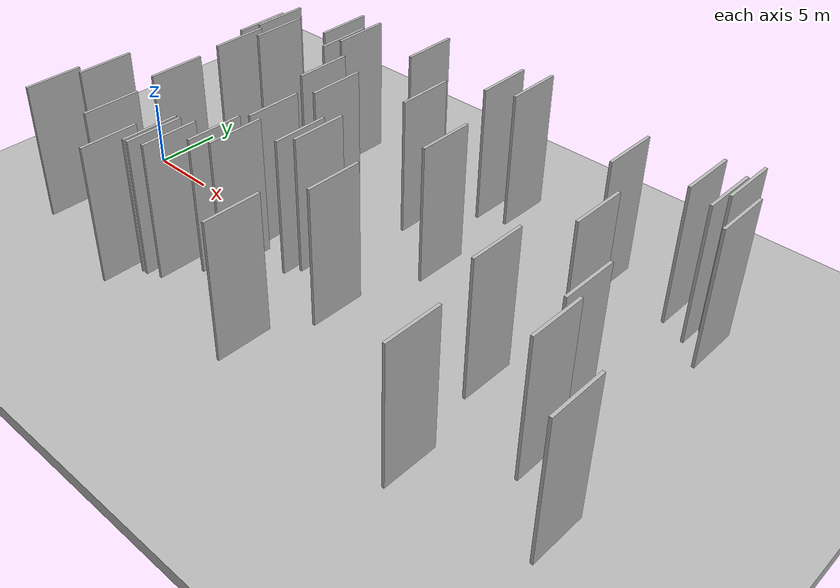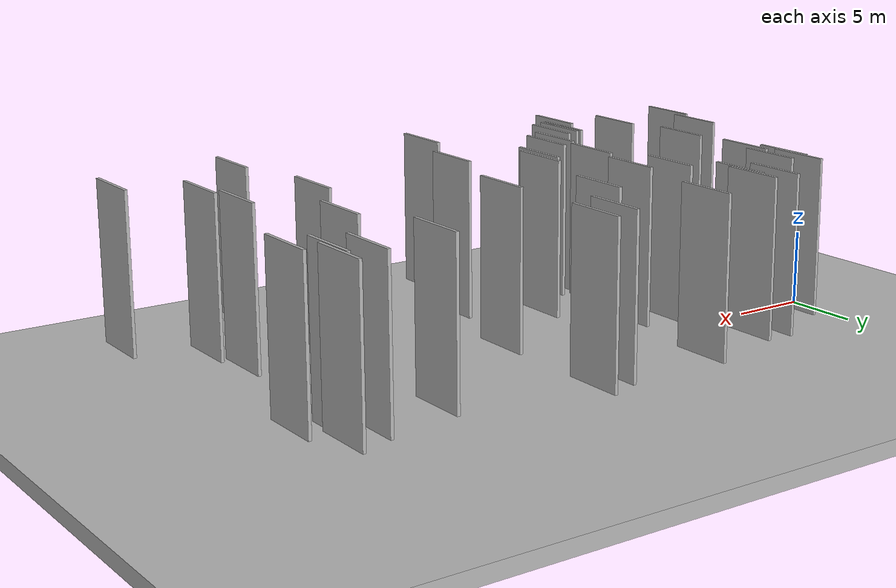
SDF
<?xml version="1.0" encoding="utf-8"?>

<sdf version="1.6">

   <world name="default">

      <gui fullscreen="0">

         <camera name="user_camera">

            <pose>-15 0 4.57585 0 0 0</pose>

            <view_controller>orbit</view_controller>

         </camera>

      </gui>

      <scene>

         <sky>

           <clouds>

             <speed>12</speed>

           </clouds>

         </sky>

         <ambient>0.4 0.4 0.4 1</ambient>

         <background>0.7 0.7 0.7 1</background>

         <shadows>1</shadows>

      </scene>

      <gravity>0 0 -9.8066</gravity>

      <magnetic_field>6e-06 2.3e-05 -4.2e-05</magnetic_field>

      <physics default="0" name="default_physics" type="ode">

         <ode>

            <solver>

               <type>quick</type>

               <iters>10</iters>

               <sor>1.0</sor>

               <use_dynamic_moi_rescaling>0</use_dynamic_moi_rescaling>

            </solver>

            <constraints>

               <cfm>0</cfm>

               <erp>0.2</erp>

               <contact_max_correcting_vel>100</contact_max_correcting_vel>

               <contact_surface_layer>0.001</contact_surface_layer>

            </constraints>

         </ode>

         <max_step_size>0.004</max_step_size>

         <real_time_factor>1</real_time_factor>

         <real_time_update_rate>250</real_time_update_rate>

      </physics>

      <light name="sun" type="directional">

         <cast_shadows>1</cast_shadows>

         <pose>0 0 10 0 0 0</pose>

         <diffuse>0.8 0.8 0.8 1</diffuse>

         <specular>0.2 0.2 0.2 1</specular>

         <attenuation>

            <range>1000</range>

            <constant>0.9</constant>

            <linear>0.01</linear>

            <quadratic>0.001</quadratic>

         </attenuation>

         <direction>-0.5 0.1 -0.9</direction>

      </light>

      <include>

         <name>ground_plane_1</name>

         <uri>model://HANNAS_ground_plane</uri>

         <pose>0 0 0  0 0 0</pose>

      </include>

      <include>

         <name>ground_plane_2</name>

         <uri>model://HANNAS_ground_plane</uri>

         <pose>100 0 0  0 0 0</pose>

      </include>

      <model name="HANNAS_wall_1">

         <static>1</static>

         <pose frame="">20.0038 -3.0696 2.5 0.000000 0.000000 1.570796</pose>

         <link name="link">

            <pose frame="">0 0 5.00 0 0 0</pose>

            <collision name="collision">

               <geometry>

                  <box>

                     <size>4.00 0.2 10.00</size>

                  </box>

               </geometry>

               <max_contacts>10</max_contacts>

               <surface>

                  <contact>

                     <ode/>

                  </contact>

                  <bounce/>

                  <friction>

                     <torsional>

                        <ode/>

                     </torsional>

                     <ode/>

                  </friction>

               </surface>

            </collision>

            <visual name="visual">

               <cast_shadows>0</cast_shadows>

               <geometry>

                  <box>

                     <size>4.00 0.2 10.00</size>

                  </box>

               </geometry>

               <material>

                  <script>

                     <uri>model://HANNAS_wall/materials/scripts</uri>

                     <uri>model://HANNAS_wall/materials/textures</uri>

                     <name>vrc/HANNAS_wall</name>

                  </script>

               </material>

            </visual>

            <self_collide>0</self_collide>

            <enable_wind>0</enable_wind>

            <kinematic>0</kinematic>

         </link>

      </model>

      <model name="HANNAS_wall_2">

         <static>1</static>

         <pose frame="">16.5379 -2.1623 2.5 0.000000 0.000000 1.570796</pose>

         <link name="link">

            <pose frame="">0 0 5.00 0 0 0</pose>

            <collision name="collision">

               <geometry>

                  <box>

                     <size>4.00 0.2 10.00</size>

                  </box>

               </geometry>

               <max_contacts>10</max_contacts>

               <surface>

                  <contact>

                     <ode/>

                  </contact>

                  <bounce/>

                  <friction>

                     <torsional>

                        <ode/>

                     </torsional>

                     <ode/>

                  </friction>

               </surface>

            </collision>

            <visual name="visual">

               <cast_shadows>0</cast_shadows>

               <geometry>

                  <box>

                     <size>4.00 0.2 10.00</size>

                  </box>

               </geometry>

               <material>

                  <script>

                     <uri>model://HANNAS_wall/materials/scripts</uri>

                     <uri>model://HANNAS_wall/materials/textures</uri>

                     <name>vrc/HANNAS_wall</name>

                  </script>

               </material>

            </visual>

            <self_collide>0</self_collide>

            <enable_wind>0</enable_wind>

            <kinematic>0</kinematic>

         </link>

      </model>

      <model name="HANNAS_wall_3">

         <static>1</static>

         <pose frame="">25.1611 -5.2143 2.5 0.000000 0.000000 1.570796</pose>

         <link name="link">

            <pose frame="">0 0 5.00 0 0 0</pose>

            <collision name="collision">

               <geometry>

                  <box>

                     <size>4.00 0.2 10.00</size>

                  </box>

               </geometry>

               <max_contacts>10</max_contacts>

               <surface>

                  <contact>

                     <ode/>

                  </contact>

                  <bounce/>

                  <friction>

                     <torsional>

                        <ode/>

                     </torsional>

                     <ode/>

                  </friction>

               </surface>

            </collision>

            <visual name="visual">

               <cast_shadows>0</cast_shadows>

               <geometry>

                  <box>

                     <size>4.00 0.2 10.00</size>

                  </box>

               </geometry>

               <material>

                  <script>

                     <uri>model://HANNAS_wall/materials/scripts</uri>

                     <uri>model://HANNAS_wall/materials/textures</uri>

                     <name>vrc/HANNAS_wall</name>

                  </script>

               </material>

            </visual>

            <self_collide>0</self_collide>

            <enable_wind>0</enable_wind>

            <kinematic>0</kinematic>

         </link>

      </model>

      <model name="HANNAS_wall_4">

         <static>1</static>

         <pose frame="">23.4198 -11.3135 2.5 0.000000 0.000000 1.570796</pose>

         <link name="link">

            <pose frame="">0 0 5.00 0 0 0</pose>

            <collision name="collision">

               <geometry>

                  <box>

                     <size>4.00 0.2 10.00</size>

                  </box>

               </geometry>

               <max_contacts>10</max_contacts>

               <surface>

                  <contact>

                     <ode/>

                  </contact>

                  <bounce/>

                  <friction>

                     <torsional>

                        <ode/>

                     </torsional>

                     <ode/>

                  </friction>

               </surface>

            </collision>

            <visual name="visual">

               <cast_shadows>0</cast_shadows>

               <geometry>

                  <box>

                     <size>4.00 0.2 10.00</size>

                  </box>

               </geometry>

               <material>

                  <script>

                     <uri>model://HANNAS_wall/materials/scripts</uri>

                     <uri>model://HANNAS_wall/materials/textures</uri>

                     <name>vrc/HANNAS_wall</name>

                  </script>

               </material>

            </visual>

            <self_collide>0</self_collide>

            <enable_wind>0</enable_wind>

            <kinematic>0</kinematic>

         </link>

      </model>

      <model name="HANNAS_wall_5">

         <static>1</static>

         <pose frame="">8.9676 -9.1478 2.5 0.000000 0.000000 1.570796</pose>

         <link name="link">

            <pose frame="">0 0 5.00 0 0 0</pose>

            <collision name="collision">

               <geometry>

                  <box>

                     <size>4.00 0.2 10.00</size>

                  </box>

               </geometry>

               <max_contacts>10</max_contacts>

               <surface>

                  <contact>

                     <ode/>

                  </contact>

                  <bounce/>

                  <friction>

                     <torsional>

                        <ode/>

                     </torsional>

                     <ode/>

                  </friction>

               </surface>

            </collision>

            <visual name="visual">

               <cast_shadows>0</cast_shadows>

               <geometry>

                  <box>

                     <size>4.00 0.2 10.00</size>

                  </box>

               </geometry>

               <material>

                  <script>

                     <uri>model://HANNAS_wall/materials/scripts</uri>

                     <uri>model://HANNAS_wall/materials/textures</uri>

                     <name>vrc/HANNAS_wall</name>

                  </script>

               </material>

            </visual>

            <self_collide>0</self_collide>

            <enable_wind>0</enable_wind>

            <kinematic>0</kinematic>

         </link>

      </model>

      <model name="HANNAS_wall_6">

         <static>1</static>

         <pose frame="">24.9732 10.5339 2.5 0.000000 0.000000 1.570796</pose>

         <link name="link">

            <pose frame="">0 0 5.00 0 0 0</pose>

            <collision name="collision">

               <geometry>

                  <box>

                     <size>4.00 0.2 10.00</size>

                  </box>

               </geometry>

               <max_contacts>10</max_contacts>

               <surface>

                  <contact>

                     <ode/>

                  </contact>

                  <bounce/>

                  <friction>

                     <torsional>

                        <ode/>

                     </torsional>

                     <ode/>

                  </friction>

               </surface>

            </collision>

            <visual name="visual">

               <cast_shadows>0</cast_shadows>

               <geometry>

                  <box>

                     <size>4.00 0.2 10.00</size>

                  </box>

               </geometry>

               <material>

                  <script>

                     <uri>model://HANNAS_wall/materials/scripts</uri>

                     <uri>model://HANNAS_wall/materials/textures</uri>

                     <name>vrc/HANNAS_wall</name>

                  </script>

               </material>

            </visual>

            <self_collide>0</self_collide>

            <enable_wind>0</enable_wind>

            <kinematic>0</kinematic>

         </link>

      </model>

      <model name="HANNAS_wall_7">

         <static>1</static>

         <pose frame="">18.3371 10.6129 2.5 0.000000 0.000000 1.570796</pose>

         <link name="link">

            <pose frame="">0 0 5.00 0 0 0</pose>

            <collision name="collision">

               <geometry>

                  <box>

                     <size>4.00 0.2 10.00</size>

                  </box>

               </geometry>

               <max_contacts>10</max_contacts>

               <surface>

                  <contact>

                     <ode/>

                  </contact>

                  <bounce/>

                  <friction>

                     <torsional>

                        <ode/>

                     </torsional>

                     <ode/>

                  </friction>

               </surface>

            </collision>

            <visual name="visual">

               <cast_shadows>0</cast_shadows>

               <geometry>

                  <box>

                     <size>4.00 0.2 10.00</size>

                  </box>

               </geometry>

               <material>

                  <script>

                     <uri>model://HANNAS_wall/materials/scripts</uri>

                     <uri>model://HANNAS_wall/materials/textures</uri>

                     <name>vrc/HANNAS_wall</name>

                  </script>

               </material>

            </visual>

            <self_collide>0</self_collide>

            <enable_wind>0</enable_wind>

            <kinematic>0</kinematic>

         </link>

      </model>

      <model name="HANNAS_wall_8">

         <static>1</static>

         <pose frame="">16.0989 -6.6021 2.5 0.000000 0.000000 1.570796</pose>

         <link name="link">

            <pose frame="">0 0 5.00 0 0 0</pose>

            <collision name="collision">

               <geometry>

                  <box>

                     <size>4.00 0.2 10.00</size>

                  </box>

               </geometry>

               <max_contacts>10</max_contacts>

               <surface>

                  <contact>

                     <ode/>

                  </contact>

                  <bounce/>

                  <friction>

                     <torsional>

                        <ode/>

                     </torsional>

                     <ode/>

                  </friction>

               </surface>

            </collision>

            <visual name="visual">

               <cast_shadows>0</cast_shadows>

               <geometry>

                  <box>

                     <size>4.00 0.2 10.00</size>

                  </box>

               </geometry>

               <material>

                  <script>

                     <uri>model://HANNAS_wall/materials/scripts</uri>

                     <uri>model://HANNAS_wall/materials/textures</uri>

                     <name>vrc/HANNAS_wall</name>

                  </script>

               </material>

            </visual>

            <self_collide>0</self_collide>

            <enable_wind>0</enable_wind>

            <kinematic>0</kinematic>

         </link>

      </model>

      <model name="HANNAS_wall_9">

         <static>1</static>

         <pose frame="">7.6789 2.5042 2.5 0.000000 0.000000 1.570796</pose>

         <link name="link">

            <pose frame="">0 0 5.00 0 0 0</pose>

            <collision name="collision">

               <geometry>

                  <box>

                     <size>4.00 0.2 10.00</size>

                  </box>

               </geometry>

               <max_contacts>10</max_contacts>

               <surface>

                  <contact>

                     <ode/>

                  </contact>

                  <bounce/>

                  <friction>

                     <torsional>

                        <ode/>

                     </torsional>

                     <ode/>

                  </friction>

               </surface>

            </collision>

            <visual name="visual">

               <cast_shadows>0</cast_shadows>

               <geometry>

                  <box>

                     <size>4.00 0.2 10.00</size>

                  </box>

               </geometry>

               <material>

                  <script>

                     <uri>model://HANNAS_wall/materials/scripts</uri>

                     <uri>model://HANNAS_wall/materials/textures</uri>

                     <name>vrc/HANNAS_wall</name>

                  </script>

               </material>

            </visual>

            <self_collide>0</self_collide>

            <enable_wind>0</enable_wind>

            <kinematic>0</kinematic>

         </link>

      </model>

      <model name="HANNAS_wall_10">

         <static>1</static>

         <pose frame="">26.8879 2.5137 2.5 0.000000 0.000000 1.570796</pose>

         <link name="link">

            <pose frame="">0 0 5.00 0 0 0</pose>

            <collision name="collision">

               <geometry>

                  <box>

                     <size>4.00 0.2 10.00</size>

                  </box>

               </geometry>

               <max_contacts>10</max_contacts>

               <surface>

                  <contact>

                     <ode/>

                  </contact>

                  <bounce/>

                  <friction>

                     <torsional>

                        <ode/>

                     </torsional>

                     <ode/>

                  </friction>

               </surface>

            </collision>

            <visual name="visual">

               <cast_shadows>0</cast_shadows>

               <geometry>

                  <box>

                     <size>4.00 0.2 10.00</size>

                  </box>

               </geometry>

               <material>

                  <script>

                     <uri>model://HANNAS_wall/materials/scripts</uri>

                     <uri>model://HANNAS_wall/materials/textures</uri>

                     <name>vrc/HANNAS_wall</name>

                  </script>

               </material>

            </visual>

            <self_collide>0</self_collide>

            <enable_wind>0</enable_wind>

            <kinematic>0</kinematic>

         </link>

      </model>

      <model name="HANNAS_wall_11">

         <static>1</static>

         <pose frame="">37.0851 -11.4978 2.5 0.000000 0.000000 1.570796</pose>

         <link name="link">

            <pose frame="">0 0 5.00 0 0 0</pose>

            <collision name="collision">

               <geometry>

                  <box>

                     <size>4.00 0.2 10.00</size>

                  </box>

               </geometry>

               <max_contacts>10</max_contacts>

               <surface>

                  <contact>

                     <ode/>

                  </contact>

                  <bounce/>

                  <friction>

                     <torsional>

                        <ode/>

                     </torsional>

                     <ode/>

                  </friction>

               </surface>

            </collision>

            <visual name="visual">

               <cast_shadows>0</cast_shadows>

               <geometry>

                  <box>

                     <size>4.00 0.2 10.00</size>

                  </box>

               </geometry>

               <material>

                  <script>

                     <uri>model://HANNAS_wall/materials/scripts</uri>

                     <uri>model://HANNAS_wall/materials/textures</uri>

                     <name>vrc/HANNAS_wall</name>

                  </script>

               </material>

            </visual>

            <self_collide>0</self_collide>

            <enable_wind>0</enable_wind>

            <kinematic>0</kinematic>

         </link>

      </model>

      <model name="HANNAS_wall_12">

         <static>1</static>

         <pose frame="">45.5154 -9.9150 2.5 0.000000 0.000000 1.570796</pose>

         <link name="link">

            <pose frame="">0 0 5.00 0 0 0</pose>

            <collision name="collision">

               <geometry>

                  <box>

                     <size>4.00 0.2 10.00</size>

                  </box>

               </geometry>

               <max_contacts>10</max_contacts>

               <surface>

                  <contact>

                     <ode/>

                  </contact>

                  <bounce/>

                  <friction>

                     <torsional>

                        <ode/>

                     </torsional>

                     <ode/>

                  </friction>

               </surface>

            </collision>

            <visual name="visual">

               <cast_shadows>0</cast_shadows>

               <geometry>

                  <box>

                     <size>4.00 0.2 10.00</size>

                  </box>

               </geometry>

               <material>

                  <script>

                     <uri>model://HANNAS_wall/materials/scripts</uri>

                     <uri>model://HANNAS_wall/materials/textures</uri>

                     <name>vrc/HANNAS_wall</name>

                  </script>

               </material>

            </visual>

            <self_collide>0</self_collide>

            <enable_wind>0</enable_wind>

            <kinematic>0</kinematic>

         </link>

      </model>

      <model name="HANNAS_wall_13">

         <static>1</static>

         <pose frame="">41.7204 -6.2857 2.5 0.000000 0.000000 1.570796</pose>

         <link name="link">

            <pose frame="">0 0 5.00 0 0 0</pose>

            <collision name="collision">

               <geometry>

                  <box>

                     <size>4.00 0.2 10.00</size>

                  </box>

               </geometry>

               <max_contacts>10</max_contacts>

               <surface>

                  <contact>

                     <ode/>

                  </contact>

                  <bounce/>

                  <friction>

                     <torsional>

                        <ode/>

                     </torsional>

                     <ode/>

                  </friction>

               </surface>

            </collision>

            <visual name="visual">

               <cast_shadows>0</cast_shadows>

               <geometry>

                  <box>

                     <size>4.00 0.2 10.00</size>

                  </box>

               </geometry>

               <material>

                  <script>

                     <uri>model://HANNAS_wall/materials/scripts</uri>

                     <uri>model://HANNAS_wall/materials/textures</uri>

                     <name>vrc/HANNAS_wall</name>

                  </script>

               </material>

            </visual>

            <self_collide>0</self_collide>

            <enable_wind>0</enable_wind>

            <kinematic>0</kinematic>

         </link>

      </model>

      <model name="HANNAS_wall_14">

         <static>1</static>

         <pose frame="">37.7984 2.7622 2.5 0.000000 0.000000 1.570796</pose>

         <link name="link">

            <pose frame="">0 0 5.00 0 0 0</pose>

            <collision name="collision">

               <geometry>

                  <box>

                     <size>4.00 0.2 10.00</size>

                  </box>

               </geometry>

               <max_contacts>10</max_contacts>

               <surface>

                  <contact>

                     <ode/>

                  </contact>

                  <bounce/>

                  <friction>

                     <torsional>

                        <ode/>

                     </torsional>

                     <ode/>

                  </friction>

               </surface>

            </collision>

            <visual name="visual">

               <cast_shadows>0</cast_shadows>

               <geometry>

                  <box>

                     <size>4.00 0.2 10.00</size>

                  </box>

               </geometry>

               <material>

                  <script>

                     <uri>model://HANNAS_wall/materials/scripts</uri>

                     <uri>model://HANNAS_wall/materials/textures</uri>

                     <name>vrc/HANNAS_wall</name>

                  </script>

               </material>

            </visual>

            <self_collide>0</self_collide>

            <enable_wind>0</enable_wind>

            <kinematic>0</kinematic>

         </link>

      </model>

      <model name="HANNAS_wall_15">

         <static>1</static>

         <pose frame="">15.0061 3.6218 2.5 0.000000 0.000000 1.570796</pose>

         <link name="link">

            <pose frame="">0 0 5.00 0 0 0</pose>

            <collision name="collision">

               <geometry>

                  <box>

                     <size>4.00 0.2 10.00</size>

                  </box>

               </geometry>

               <max_contacts>10</max_contacts>

               <surface>

                  <contact>

                     <ode/>

                  </contact>

                  <bounce/>

                  <friction>

                     <torsional>

                        <ode/>

                     </torsional>

                     <ode/>

                  </friction>

               </surface>

            </collision>

            <visual name="visual">

               <cast_shadows>0</cast_shadows>

               <geometry>

                  <box>

                     <size>4.00 0.2 10.00</size>

                  </box>

               </geometry>

               <material>

                  <script>

                     <uri>model://HANNAS_wall/materials/scripts</uri>

                     <uri>model://HANNAS_wall/materials/textures</uri>

                     <name>vrc/HANNAS_wall</name>

                  </script>

               </material>

            </visual>

            <self_collide>0</self_collide>

            <enable_wind>0</enable_wind>

            <kinematic>0</kinematic>

         </link>

      </model>

      <model name="HANNAS_wall_16">

         <static>1</static>

         <pose frame="">41.1360 -2.8592 2.5 0.000000 0.000000 1.570796</pose>

         <link name="link">

            <pose frame="">0 0 5.00 0 0 0</pose>

            <collision name="collision">

               <geometry>

                  <box>

                     <size>4.00 0.2 10.00</size>

                  </box>

               </geometry>

               <max_contacts>10</max_contacts>

               <surface>

                  <contact>

                     <ode/>

                  </contact>

                  <bounce/>

                  <friction>

                     <torsional>

                        <ode/>

                     </torsional>

                     <ode/>

                  </friction>

               </surface>

            </collision>

            <visual name="visual">

               <cast_shadows>0</cast_shadows>

               <geometry>

                  <box>

                     <size>4.00 0.2 10.00</size>

                  </box>

               </geometry>

               <material>

                  <script>

                     <uri>model://HANNAS_wall/materials/scripts</uri>

                     <uri>model://HANNAS_wall/materials/textures</uri>

                     <name>vrc/HANNAS_wall</name>

                  </script>

               </material>

            </visual>

            <self_collide>0</self_collide>

            <enable_wind>0</enable_wind>

            <kinematic>0</kinematic>

         </link>

      </model>

      <model name="HANNAS_wall_17">

         <static>1</static>

         <pose frame="">40.3492 9.9096 2.5 0.000000 0.000000 1.570796</pose>

         <link name="link">

            <pose frame="">0 0 5.00 0 0 0</pose>

            <collision name="collision">

               <geometry>

                  <box>

                     <size>4.00 0.2 10.00</size>

                  </box>

               </geometry>

               <max_contacts>10</max_contacts>

               <surface>

                  <contact>

                     <ode/>

                  </contact>

                  <bounce/>

                  <friction>

                     <torsional>

                        <ode/>

                     </torsional>

                     <ode/>

                  </friction>

               </surface>

            </collision>

            <visual name="visual">

               <cast_shadows>0</cast_shadows>

               <geometry>

                  <box>

                     <size>4.00 0.2 10.00</size>

                  </box>

               </geometry>

               <material>

                  <script>

                     <uri>model://HANNAS_wall/materials/scripts</uri>

                     <uri>model://HANNAS_wall/materials/textures</uri>

                     <name>vrc/HANNAS_wall</name>

                  </script>

               </material>

            </visual>

            <self_collide>0</self_collide>

            <enable_wind>0</enable_wind>

            <kinematic>0</kinematic>

         </link>

      </model>

      <model name="HANNAS_wall_18">

         <static>1</static>

         <pose frame="">42.1776 9.1318 2.5 0.000000 0.000000 1.570796</pose>

         <link name="link">

            <pose frame="">0 0 5.00 0 0 0</pose>

            <collision name="collision">

               <geometry>

                  <box>

                     <size>4.00 0.2 10.00</size>

                  </box>

               </geometry>

               <max_contacts>10</max_contacts>

               <surface>

                  <contact>

                     <ode/>

                  </contact>

                  <bounce/>

                  <friction>

                     <torsional>

                        <ode/>

                     </torsional>

                     <ode/>

                  </friction>

               </surface>

            </collision>

            <visual name="visual">

               <cast_shadows>0</cast_shadows>

               <geometry>

                  <box>

                     <size>4.00 0.2 10.00</size>

                  </box>

               </geometry>

               <material>

                  <script>

                     <uri>model://HANNAS_wall/materials/scripts</uri>

                     <uri>model://HANNAS_wall/materials/textures</uri>

                     <name>vrc/HANNAS_wall</name>

                  </script>

               </material>

            </visual>

            <self_collide>0</self_collide>

            <enable_wind>0</enable_wind>

            <kinematic>0</kinematic>

         </link>

      </model>

      <model name="HANNAS_wall_19">

         <static>1</static>

         <pose frame="">12.2866 -11.6590 2.5 0.000000 0.000000 1.570796</pose>

         <link name="link">

            <pose frame="">0 0 5.00 0 0 0</pose>

            <collision name="collision">

               <geometry>

                  <box>

                     <size>4.00 0.2 10.00</size>

                  </box>

               </geometry>

               <max_contacts>10</max_contacts>

               <surface>

                  <contact>

                     <ode/>

                  </contact>

                  <bounce/>

                  <friction>

                     <torsional>

                        <ode/>

                     </torsional>

                     <ode/>

                  </friction>

               </surface>

            </collision>

            <visual name="visual">

               <cast_shadows>0</cast_shadows>

               <geometry>

                  <box>

                     <size>4.00 0.2 10.00</size>

                  </box>

               </geometry>

               <material>

                  <script>

                     <uri>model://HANNAS_wall/materials/scripts</uri>

                     <uri>model://HANNAS_wall/materials/textures</uri>

                     <name>vrc/HANNAS_wall</name>

                  </script>

               </material>

            </visual>

            <self_collide>0</self_collide>

            <enable_wind>0</enable_wind>

            <kinematic>0</kinematic>

         </link>

      </model>

      <model name="HANNAS_wall_20">

         <static>1</static>

         <pose frame="">6.9566 5.2648 2.5 0.000000 0.000000 1.570796</pose>

         <link name="link">

            <pose frame="">0 0 5.00 0 0 0</pose>

            <collision name="collision">

               <geometry>

                  <box>

                     <size>4.00 0.2 10.00</size>

                  </box>

               </geometry>

               <max_contacts>10</max_contacts>

               <surface>

                  <contact>

                     <ode/>

                  </contact>

                  <bounce/>

                  <friction>

                     <torsional>

                        <ode/>

                     </torsional>

                     <ode/>

                  </friction>

               </surface>

            </collision>

            <visual name="visual">

               <cast_shadows>0</cast_shadows>

               <geometry>

                  <box>

                     <size>4.00 0.2 10.00</size>

                  </box>

               </geometry>

               <material>

                  <script>

                     <uri>model://HANNAS_wall/materials/scripts</uri>

                     <uri>model://HANNAS_wall/materials/textures</uri>

                     <name>vrc/HANNAS_wall</name>

                  </script>

               </material>

            </visual>

            <self_collide>0</self_collide>

            <enable_wind>0</enable_wind>

            <kinematic>0</kinematic>

         </link>

      </model>

      <model name="HANNAS_wall_21">

         <static>1</static>

         <pose frame="">8.0371 -3.2807 2.5 0.000000 0.000000 1.570796</pose>

         <link name="link">

            <pose frame="">0 0 5.00 0 0 0</pose>

            <collision name="collision">

               <geometry>

                  <box>

                     <size>4.00 0.2 10.00</size>

                  </box>

               </geometry>

               <max_contacts>10</max_contacts>

               <surface>

                  <contact>

                     <ode/>

                  </contact>

                  <bounce/>

                  <friction>

                     <torsional>

                        <ode/>

                     </torsional>

                     <ode/>

                  </friction>

               </surface>

            </collision>

            <visual name="visual">

               <cast_shadows>0</cast_shadows>

               <geometry>

                  <box>

                     <size>4.00 0.2 10.00</size>

                  </box>

               </geometry>

               <material>

                  <script>

                     <uri>model://HANNAS_wall/materials/scripts</uri>

                     <uri>model://HANNAS_wall/materials/textures</uri>

                     <name>vrc/HANNAS_wall</name>

                  </script>

               </material>

            </visual>

            <self_collide>0</self_collide>

            <enable_wind>0</enable_wind>

            <kinematic>0</kinematic>

         </link>

      </model>

      <model name="HANNAS_wall_22">

         <static>1</static>

         <pose frame="">17.3110 2.6109 2.5 0.000000 0.000000 1.570796</pose>

         <link name="link">

            <pose frame="">0 0 5.00 0 0 0</pose>

            <collision name="collision">

               <geometry>

                  <box>

                     <size>4.00 0.2 10.00</size>

                  </box>

               </geometry>

               <max_contacts>10</max_contacts>

               <surface>

                  <contact>

                     <ode/>

                  </contact>

                  <bounce/>

                  <friction>

                     <torsional>

                        <ode/>

                     </torsional>

                     <ode/>

                  </friction>

               </surface>

            </collision>

            <visual name="visual">

               <cast_shadows>0</cast_shadows>

               <geometry>

                  <box>

                     <size>4.00 0.2 10.00</size>

                  </box>

               </geometry>

               <material>

                  <script>

                     <uri>model://HANNAS_wall/materials/scripts</uri>

                     <uri>model://HANNAS_wall/materials/textures</uri>

                     <name>vrc/HANNAS_wall</name>

                  </script>

               </material>

            </visual>

            <self_collide>0</self_collide>

            <enable_wind>0</enable_wind>

            <kinematic>0</kinematic>

         </link>

      </model>

      <model name="HANNAS_wall_23">

         <static>1</static>

         <pose frame="">3.4692 -9.8752 2.5 0.000000 0.000000 1.570796</pose>

         <link name="link">

            <pose frame="">0 0 5.00 0 0 0</pose>

            <collision name="collision">

               <geometry>

                  <box>

                     <size>4.00 0.2 10.00</size>

                  </box>

               </geometry>

               <max_contacts>10</max_contacts>

               <surface>

                  <contact>

                     <ode/>

                  </contact>

                  <bounce/>

                  <friction>

                     <torsional>

                        <ode/>

                     </torsional>

                     <ode/>

                  </friction>

               </surface>

            </collision>

            <visual name="visual">

               <cast_shadows>0</cast_shadows>

               <geometry>

                  <box>

                     <size>4.00 0.2 10.00</size>

                  </box>

               </geometry>

               <material>

                  <script>

                     <uri>model://HANNAS_wall/materials/scripts</uri>

                     <uri>model://HANNAS_wall/materials/textures</uri>

                     <name>vrc/HANNAS_wall</name>

                  </script>

               </material>

            </visual>

            <self_collide>0</self_collide>

            <enable_wind>0</enable_wind>

            <kinematic>0</kinematic>

         </link>

      </model>

      <model name="HANNAS_wall_24">

         <static>1</static>

         <pose frame="">26.8640 11.2355 2.5 0.000000 0.000000 1.570796</pose>

         <link name="link">

            <pose frame="">0 0 5.00 0 0 0</pose>

            <collision name="collision">

               <geometry>

                  <box>

                     <size>4.00 0.2 10.00</size>

                  </box>

               </geometry>

               <max_contacts>10</max_contacts>

               <surface>

                  <contact>

                     <ode/>

                  </contact>

                  <bounce/>

                  <friction>

                     <torsional>

                        <ode/>

                     </torsional>

                     <ode/>

                  </friction>

               </surface>

            </collision>

            <visual name="visual">

               <cast_shadows>0</cast_shadows>

               <geometry>

                  <box>

                     <size>4.00 0.2 10.00</size>

                  </box>

               </geometry>

               <material>

                  <script>

                     <uri>model://HANNAS_wall/materials/scripts</uri>

                     <uri>model://HANNAS_wall/materials/textures</uri>

                     <name>vrc/HANNAS_wall</name>

                  </script>

               </material>

            </visual>

            <self_collide>0</self_collide>

            <enable_wind>0</enable_wind>

            <kinematic>0</kinematic>

         </link>

      </model>

      <model name="HANNAS_wall_25">

         <static>1</static>

         <pose frame="">35.8711 -3.6347 2.5 0.000000 0.000000 1.570796</pose>

         <link name="link">

            <pose frame="">0 0 5.00 0 0 0</pose>

            <collision name="collision">

               <geometry>

                  <box>

                     <size>4.00 0.2 10.00</size>

                  </box>

               </geometry>

               <max_contacts>10</max_contacts>

               <surface>

                  <contact>

                     <ode/>

                  </contact>

                  <bounce/>

                  <friction>

                     <torsional>

                        <ode/>

                     </torsional>

                     <ode/>

                  </friction>

               </surface>

            </collision>

            <visual name="visual">

               <cast_shadows>0</cast_shadows>

               <geometry>

                  <box>

                     <size>4.00 0.2 10.00</size>

                  </box>

               </geometry>

               <material>

                  <script>

                     <uri>model://HANNAS_wall/materials/scripts</uri>

                     <uri>model://HANNAS_wall/materials/textures</uri>

                     <name>vrc/HANNAS_wall</name>

                  </script>

               </material>

            </visual>

            <self_collide>0</self_collide>

            <enable_wind>0</enable_wind>

            <kinematic>0</kinematic>

         </link>

      </model>

      <model name="HANNAS_wall_26">

         <static>1</static>

         <pose frame="">42.4738 10.7288 2.5 0.000000 0.000000 1.570796</pose>

         <link name="link">

            <pose frame="">0 0 5.00 0 0 0</pose>

            <collision name="collision">

               <geometry>

                  <box>

                     <size>4.00 0.2 10.00</size>

                  </box>

               </geometry>

               <max_contacts>10</max_contacts>

               <surface>

                  <contact>

                     <ode/>

                  </contact>

                  <bounce/>

                  <friction>

                     <torsional>

                        <ode/>

                     </torsional>

                     <ode/>

                  </friction>

               </surface>

            </collision>

            <visual name="visual">

               <cast_shadows>0</cast_shadows>

               <geometry>

                  <box>

                     <size>4.00 0.2 10.00</size>

                  </box>

               </geometry>

               <material>

                  <script>

                     <uri>model://HANNAS_wall/materials/scripts</uri>

                     <uri>model://HANNAS_wall/materials/textures</uri>

                     <name>vrc/HANNAS_wall</name>

                  </script>

               </material>

            </visual>

            <self_collide>0</self_collide>

            <enable_wind>0</enable_wind>

            <kinematic>0</kinematic>

         </link>

      </model>

      <model name="HANNAS_wall_27">

         <static>1</static>

         <pose frame="">17.2896 -5.9374 2.5 0.000000 0.000000 1.570796</pose>

         <link name="link">

            <pose frame="">0 0 5.00 0 0 0</pose>

            <collision name="collision">

               <geometry>

                  <box>

                     <size>4.00 0.2 10.00</size>

                  </box>

               </geometry>

               <max_contacts>10</max_contacts>

               <surface>

                  <contact>

                     <ode/>

                  </contact>

                  <bounce/>

                  <friction>

                     <torsional>

                        <ode/>

                     </torsional>

                     <ode/>

                  </friction>

               </surface>

            </collision>

            <visual name="visual">

               <cast_shadows>0</cast_shadows>

               <geometry>

                  <box>

                     <size>4.00 0.2 10.00</size>

                  </box>

               </geometry>

               <material>

                  <script>

                     <uri>model://HANNAS_wall/materials/scripts</uri>

                     <uri>model://HANNAS_wall/materials/textures</uri>

                     <name>vrc/HANNAS_wall</name>

                  </script>

               </material>

            </visual>

            <self_collide>0</self_collide>

            <enable_wind>0</enable_wind>

            <kinematic>0</kinematic>

         </link>

      </model>

      <model name="HANNAS_wall_28">

         <static>1</static>

         <pose frame="">22.2937 5.7646 2.5 0.000000 0.000000 1.570796</pose>

         <link name="link">

            <pose frame="">0 0 5.00 0 0 0</pose>

            <collision name="collision">

               <geometry>

                  <box>

                     <size>4.00 0.2 10.00</size>

                  </box>

               </geometry>

               <max_contacts>10</max_contacts>

               <surface>

                  <contact>

                     <ode/>

                  </contact>

                  <bounce/>

                  <friction>

                     <torsional>

                        <ode/>

                     </torsional>

                     <ode/>

                  </friction>

               </surface>

            </collision>

            <visual name="visual">

               <cast_shadows>0</cast_shadows>

               <geometry>

                  <box>

                     <size>4.00 0.2 10.00</size>

                  </box>

               </geometry>

               <material>

                  <script>

                     <uri>model://HANNAS_wall/materials/scripts</uri>

                     <uri>model://HANNAS_wall/materials/textures</uri>

                     <name>vrc/HANNAS_wall</name>

                  </script>

               </material>

            </visual>

            <self_collide>0</self_collide>

            <enable_wind>0</enable_wind>

            <kinematic>0</kinematic>

         </link>

      </model>

      <model name="HANNAS_wall_29">

         <static>1</static>

         <pose frame="">7.1774 6.7658 2.5 0.000000 0.000000 1.570796</pose>

         <link name="link">

            <pose frame="">0 0 5.00 0 0 0</pose>

            <collision name="collision">

               <geometry>

                  <box>

                     <size>4.00 0.2 10.00</size>

                  </box>

               </geometry>

               <max_contacts>10</max_contacts>

               <surface>

                  <contact>

                     <ode/>

                  </contact>

                  <bounce/>

                  <friction>

                     <torsional>

                        <ode/>

                     </torsional>

                     <ode/>

                  </friction>

               </surface>

            </collision>

            <visual name="visual">

               <cast_shadows>0</cast_shadows>

               <geometry>

                  <box>

                     <size>4.00 0.2 10.00</size>

                  </box>

               </geometry>

               <material>

                  <script>

                     <uri>model://HANNAS_wall/materials/scripts</uri>

                     <uri>model://HANNAS_wall/materials/textures</uri>

                     <name>vrc/HANNAS_wall</name>

                  </script>

               </material>

            </visual>

            <self_collide>0</self_collide>

            <enable_wind>0</enable_wind>

            <kinematic>0</kinematic>

         </link>

      </model>

      <model name="HANNAS_wall_30">

         <static>1</static>

         <pose frame="">14.6392 -8.9132 2.5 0.000000 0.000000 1.570796</pose>

         <link name="link">

            <pose frame="">0 0 5.00 0 0 0</pose>

            <collision name="collision">

               <geometry>

                  <box>

                     <size>4.00 0.2 10.00</size>

                  </box>

               </geometry>

               <max_contacts>10</max_contacts>

               <surface>

                  <contact>

                     <ode/>

                  </contact>

                  <bounce/>

                  <friction>

                     <torsional>

                        <ode/>

                     </torsional>

                     <ode/>

                  </friction>

               </surface>

            </collision>

            <visual name="visual">

               <cast_shadows>0</cast_shadows>

               <geometry>

                  <box>

                     <size>4.00 0.2 10.00</size>

                  </box>

               </geometry>

               <material>

                  <script>

                     <uri>model://HANNAS_wall/materials/scripts</uri>

                     <uri>model://HANNAS_wall/materials/textures</uri>

                     <name>vrc/HANNAS_wall</name>

                  </script>

               </material>

            </visual>

            <self_collide>0</self_collide>

            <enable_wind>0</enable_wind>

            <kinematic>0</kinematic>

         </link>

      </model>

      <model name="HANNAS_wall_31">

         <static>1</static>

         <pose frame="">43.8133 7.6485 2.5 0.000000 0.000000 1.570796</pose>

         <link name="link">

            <pose frame="">0 0 5.00 0 0 0</pose>

            <collision name="collision">

               <geometry>

                  <box>

                     <size>4.00 0.2 10.00</size>

                  </box>

               </geometry>

               <max_contacts>10</max_contacts>

               <surface>

                  <contact>

                     <ode/>

                  </contact>

                  <bounce/>

                  <friction>

                     <torsional>

                        <ode/>

                     </torsional>

                     <ode/>

                  </friction>

               </surface>

            </collision>

            <visual name="visual">

               <cast_shadows>0</cast_shadows>

               <geometry>

                  <box>

                     <size>4.00 0.2 10.00</size>

                  </box>

               </geometry>

               <material>

                  <script>

                     <uri>model://HANNAS_wall/materials/scripts</uri>

                     <uri>model://HANNAS_wall/materials/textures</uri>

                     <name>vrc/HANNAS_wall</name>

                  </script>

               </material>

            </visual>

            <self_collide>0</self_collide>

            <enable_wind>0</enable_wind>

            <kinematic>0</kinematic>

         </link>

      </model>

      <model name="HANNAS_wall_32">

         <static>1</static>

         <pose frame="">8.4398 5.5469 2.5 0.000000 0.000000 1.570796</pose>

         <link name="link">

            <pose frame="">0 0 5.00 0 0 0</pose>

            <collision name="collision">

               <geometry>

                  <box>

                     <size>4.00 0.2 10.00</size>

                  </box>

               </geometry>

               <max_contacts>10</max_contacts>

               <surface>

                  <contact>

                     <ode/>

                  </contact>

                  <bounce/>

                  <friction>

                     <torsional>

                        <ode/>

                     </torsional>

                     <ode/>

                  </friction>

               </surface>

            </collision>

            <visual name="visual">

               <cast_shadows>0</cast_shadows>

               <geometry>

                  <box>

                     <size>4.00 0.2 10.00</size>

                  </box>

               </geometry>

               <material>

                  <script>

                     <uri>model://HANNAS_wall/materials/scripts</uri>

                     <uri>model://HANNAS_wall/materials/textures</uri>

                     <name>vrc/HANNAS_wall</name>

                  </script>

               </material>

            </visual>

            <self_collide>0</self_collide>

            <enable_wind>0</enable_wind>

            <kinematic>0</kinematic>

         </link>

      </model>

      <model name="HANNAS_wall_33">

         <static>1</static>

         <pose frame="">13.2818 -9.3208 2.5 0.000000 0.000000 1.570796</pose>

         <link name="link">

            <pose frame="">0 0 5.00 0 0 0</pose>

            <collision name="collision">

               <geometry>

                  <box>

                     <size>4.00 0.2 10.00</size>

                  </box>

               </geometry>

               <max_contacts>10</max_contacts>

               <surface>

                  <contact>

                     <ode/>

                  </contact>

                  <bounce/>

                  <friction>

                     <torsional>

                        <ode/>

                     </torsional>

                     <ode/>

                  </friction>

               </surface>

            </collision>

            <visual name="visual">

               <cast_shadows>0</cast_shadows>

               <geometry>

                  <box>

                     <size>4.00 0.2 10.00</size>

                  </box>

               </geometry>

               <material>

                  <script>

                     <uri>model://HANNAS_wall/materials/scripts</uri>

                     <uri>model://HANNAS_wall/materials/textures</uri>

                     <name>vrc/HANNAS_wall</name>

                  </script>

               </material>

            </visual>

            <self_collide>0</self_collide>

            <enable_wind>0</enable_wind>

            <kinematic>0</kinematic>

         </link>

      </model>

      <model name="HANNAS_wall_34">

         <static>1</static>

         <pose frame="">12.9240 7.6185 2.5 0.000000 0.000000 1.570796</pose>

         <link name="link">

            <pose frame="">0 0 5.00 0 0 0</pose>

            <collision name="collision">

               <geometry>

                  <box>

                     <size>4.00 0.2 10.00</size>

                  </box>

               </geometry>

               <max_contacts>10</max_contacts>

               <surface>

                  <contact>

                     <ode/>

                  </contact>

                  <bounce/>

                  <friction>

                     <torsional>

                        <ode/>

                     </torsional>

                     <ode/>

                  </friction>

               </surface>

            </collision>

            <visual name="visual">

               <cast_shadows>0</cast_shadows>

               <geometry>

                  <box>

                     <size>4.00 0.2 10.00</size>

                  </box>

               </geometry>

               <material>

                  <script>

                     <uri>model://HANNAS_wall/materials/scripts</uri>

                     <uri>model://HANNAS_wall/materials/textures</uri>

                     <name>vrc/HANNAS_wall</name>

                  </script>

               </material>

            </visual>

            <self_collide>0</self_collide>

            <enable_wind>0</enable_wind>

            <kinematic>0</kinematic>

         </link>

      </model>

      <model name="HANNAS_wall_35">

         <static>1</static>

         <pose frame="">11.4705 9.0788 2.5 0.000000 0.000000 1.570796</pose>

         <link name="link">

            <pose frame="">0 0 5.00 0 0 0</pose>

            <collision name="collision">

               <geometry>

                  <box>

                     <size>4.00 0.2 10.00</size>

                  </box>

               </geometry>

               <max_contacts>10</max_contacts>

               <surface>

                  <contact>

                     <ode/>

                  </contact>

                  <bounce/>

                  <friction>

                     <torsional>

                        <ode/>

                     </torsional>

                     <ode/>

                  </friction>

               </surface>

            </collision>

            <visual name="visual">

               <cast_shadows>0</cast_shadows>

               <geometry>

                  <box>

                     <size>4.00 0.2 10.00</size>

                  </box>

               </geometry>

               <material>

                  <script>

                     <uri>model://HANNAS_wall/materials/scripts</uri>

                     <uri>model://HANNAS_wall/materials/textures</uri>

                     <name>vrc/HANNAS_wall</name>

                  </script>

               </material>

            </visual>

            <self_collide>0</self_collide>

            <enable_wind>0</enable_wind>

            <kinematic>0</kinematic>

         </link>

      </model>

      <model name="HANNAS_wall_36">

         <static>1</static>

         <pose frame="">35.6950 9.0078 2.5 0.000000 0.000000 1.570796</pose>

         <link name="link">

            <pose frame="">0 0 5.00 0 0 0</pose>

            <collision name="collision">

               <geometry>

                  <box>

                     <size>4.00 0.2 10.00</size>

                  </box>

               </geometry>

               <max_contacts>10</max_contacts>

               <surface>

                  <contact>

                     <ode/>

                  </contact>

                  <bounce/>

                  <friction>

                     <torsional>

                        <ode/>

                     </torsional>

                     <ode/>

                  </friction>

               </surface>

            </collision>

            <visual name="visual">

               <cast_shadows>0</cast_shadows>

               <geometry>

                  <box>

                     <size>4.00 0.2 10.00</size>

                  </box>

               </geometry>

               <material>

                  <script>

                     <uri>model://HANNAS_wall/materials/scripts</uri>

                     <uri>model://HANNAS_wall/materials/textures</uri>

                     <name>vrc/HANNAS_wall</name>

                  </script>

               </material>

            </visual>

            <self_collide>0</self_collide>

            <enable_wind>0</enable_wind>

            <kinematic>0</kinematic>

         </link>

      </model>

      <model name="HANNAS_wall_37">

         <static>1</static>

         <pose frame="">4.1592 -6.3037 2.5 0.000000 0.000000 1.570796</pose>

         <link name="link">

            <pose frame="">0 0 5.00 0 0 0</pose>

            <collision name="collision">

               <geometry>

                  <box>

                     <size>4.00 0.2 10.00</size>

                  </box>

               </geometry>

               <max_contacts>10</max_contacts>

               <surface>

                  <contact>

                     <ode/>

                  </contact>

                  <bounce/>

                  <friction>

                     <torsional>

                        <ode/>

                     </torsional>

                     <ode/>

                  </friction>

               </surface>

            </collision>

            <visual name="visual">

               <cast_shadows>0</cast_shadows>

               <geometry>

                  <box>

                     <size>4.00 0.2 10.00</size>

                  </box>

               </geometry>

               <material>

                  <script>

                     <uri>model://HANNAS_wall/materials/scripts</uri>

                     <uri>model://HANNAS_wall/materials/textures</uri>

                     <name>vrc/HANNAS_wall</name>

                  </script>

               </material>

            </visual>

            <self_collide>0</self_collide>

            <enable_wind>0</enable_wind>

            <kinematic>0</kinematic>

         </link>

      </model>

      <model name="HANNAS_wall_38">

         <static>1</static>

         <pose frame="">20.6352 -2.1229 2.5 0.000000 0.000000 1.570796</pose>

         <link name="link">

            <pose frame="">0 0 5.00 0 0 0</pose>

            <collision name="collision">

               <geometry>

                  <box>

                     <size>4.00 0.2 10.00</size>

                  </box>

               </geometry>

               <max_contacts>10</max_contacts>

               <surface>

                  <contact>

                     <ode/>

                  </contact>

                  <bounce/>

                  <friction>

                     <torsional>

                        <ode/>

                     </torsional>

                     <ode/>

                  </friction>

               </surface>

            </collision>

            <visual name="visual">

               <cast_shadows>0</cast_shadows>

               <geometry>

                  <box>

                     <size>4.00 0.2 10.00</size>

                  </box>

               </geometry>

               <material>

                  <script>

                     <uri>model://HANNAS_wall/materials/scripts</uri>

                     <uri>model://HANNAS_wall/materials/textures</uri>

                     <name>vrc/HANNAS_wall</name>

                  </script>

               </material>

            </visual>

            <self_collide>0</self_collide>

            <enable_wind>0</enable_wind>

            <kinematic>0</kinematic>

         </link>

      </model>

      <model name="HANNAS_wall_39">

         <static>1</static>

         <pose frame="">13.2158 9.0230 2.5 0.000000 0.000000 1.570796</pose>

         <link name="link">

            <pose frame="">0 0 5.00 0 0 0</pose>

            <collision name="collision">

               <geometry>

                  <box>

                     <size>4.00 0.2 10.00</size>

                  </box>

               </geometry>

               <max_contacts>10</max_contacts>

               <surface>

                  <contact>

                     <ode/>

                  </contact>

                  <bounce/>

                  <friction>

                     <torsional>

                        <ode/>

                     </torsional>

                     <ode/>

                  </friction>

               </surface>

            </collision>

            <visual name="visual">

               <cast_shadows>0</cast_shadows>

               <geometry>

                  <box>

                     <size>4.00 0.2 10.00</size>

                  </box>

               </geometry>

               <material>

                  <script>

                     <uri>model://HANNAS_wall/materials/scripts</uri>

                     <uri>model://HANNAS_wall/materials/textures</uri>

                     <name>vrc/HANNAS_wall</name>

                  </script>

               </material>

            </visual>

            <self_collide>0</self_collide>

            <enable_wind>0</enable_wind>

            <kinematic>0</kinematic>

         </link>

      </model>

      <model name="HANNAS_wall_40">

         <static>1</static>

         <pose frame="">13.6457 -9.3051 2.5 0.000000 0.000000 1.570796</pose>

         <link name="link">

            <pose frame="">0 0 5.00 0 0 0</pose>

            <collision name="collision">

               <geometry>

                  <box>

                     <size>4.00 0.2 10.00</size>

                  </box>

               </geometry>

               <max_contacts>10</max_contacts>

               <surface>

                  <contact>

                     <ode/>

                  </contact>

                  <bounce/>

                  <friction>

                     <torsional>

                        <ode/>

                     </torsional>

                     <ode/>

                  </friction>

               </surface>

            </collision>

            <visual name="visual">

               <cast_shadows>0</cast_shadows>

               <geometry>

                  <box>

                     <size>4.00 0.2 10.00</size>

                  </box>

               </geometry>

               <material>

                  <script>

                     <uri>model://HANNAS_wall/materials/scripts</uri>

                     <uri>model://HANNAS_wall/materials/textures</uri>

                     <name>vrc/HANNAS_wall</name>

                  </script>

               </material>

            </visual>

            <self_collide>0</self_collide>

            <enable_wind>0</enable_wind>

            <kinematic>0</kinematic>

         </link>

      </model>

   </world>

</sdf>
